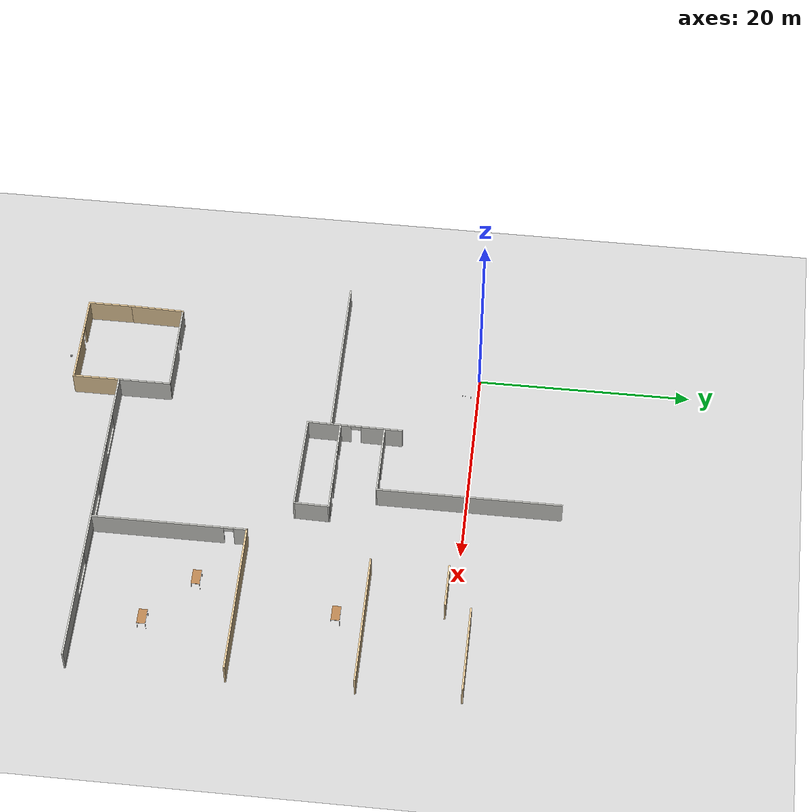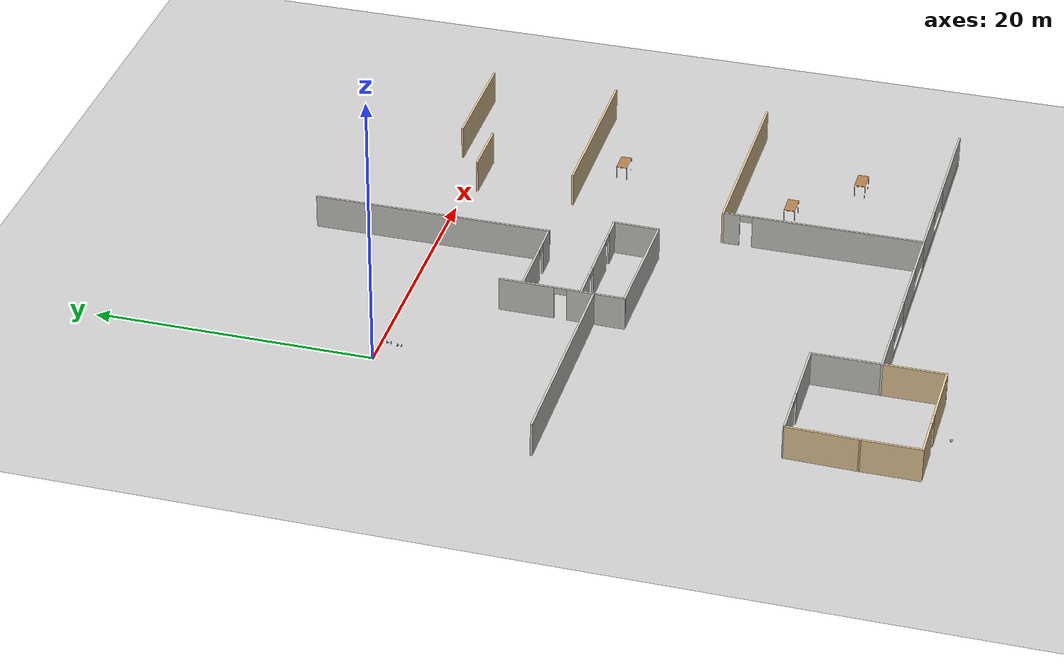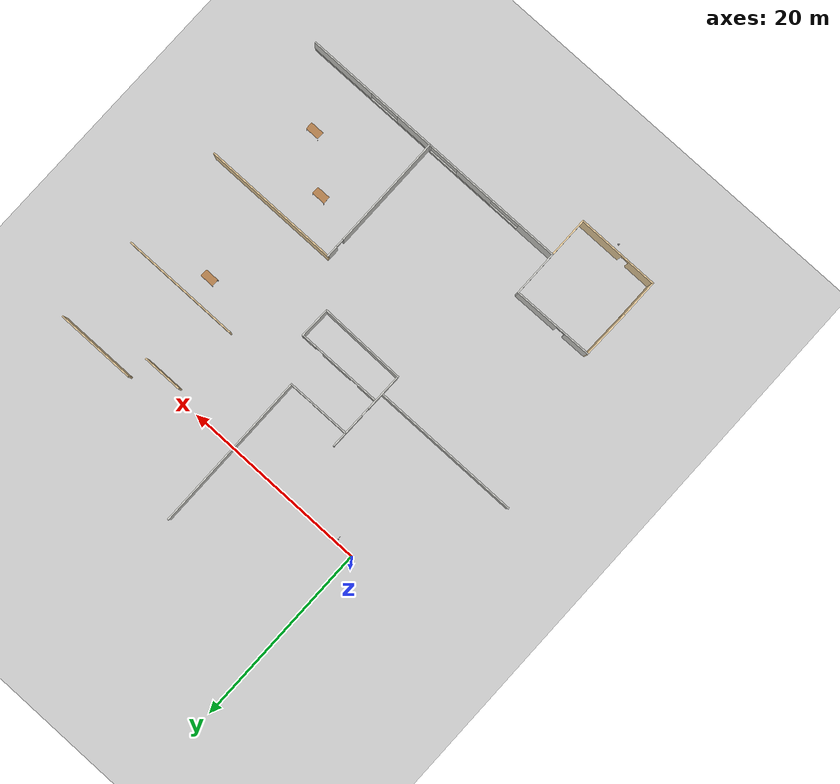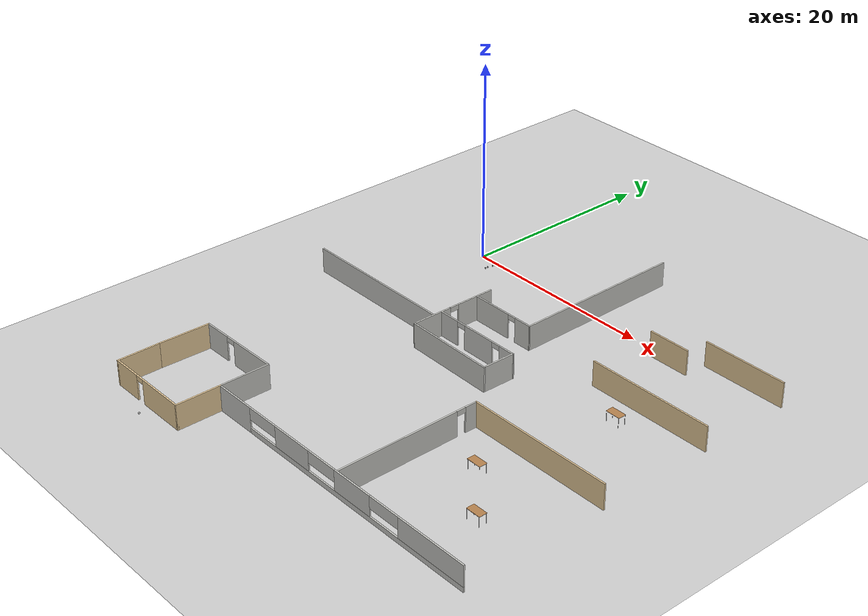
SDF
<sdf version="1.6">
 <world name="default">
  <model name="ground_plane">
   <static>1</static>
   <link name="link">
    <collision name="collision">
     <geometry><plane><normal>0 0 1</normal><size>100 100</size></plane></geometry>
     <surface><friction><ode><mu>100</mu><mu2>50</mu2></ode></friction></surface>
    </collision>
    <visual name="visual">
     <cast_shadows>0</cast_shadows>
     <geometry><plane><normal>0 0 1</normal><size>100 100</size></plane></geometry>
     <material>
      <script><uri>file://media/materials/scripts/gazebo.material</uri><name>Gazebo/Grey</name></script>
     </material>
    </visual>
   </link>
  </model>
  <model name="Building">
   <pose>0.1606 -0.442 0 0 -0 0</pose>
   <link name="Wall_100">
    <pose>12.7391 -11.9796 0 0 -0 3.14159</pose>
    <visual name="Wall_100_Visual_0">
     <pose>-3.75183 0 1.25 0 -0 0</pose>
     <geometry><box><size>1.74633 0.15 2.5</size></box></geometry>
     <material>
      <script><uri>file://media/materials/scripts/gazebo.material</uri><name>Gazebo/CeilingTiled</name></script>
      <ambient>1 1 1 1</ambient>
     </material>
     <meta><layer>0</layer></meta>
    </visual>
    <collision name="Wall_100_Collision_0">
     <geometry><box><size>1.74633 0.15 2.5</size></box></geometry>
     <pose>-3.75183 0 1.25 0 -0 0</pose>
    </collision>
    <visual name="Wall_100_Visual_1">
     <pose>-0.201089 0 1.25 0 -0 0</pose>
     <geometry><box><size>3.55516 0.15 2.5</size></box></geometry>
     <material>
      <script><uri>file://media/materials/scripts/gazebo.material</uri><name>Gazebo/CeilingTiled</name></script>
      <ambient>1 1 1 1</ambient>
     </material>
     <meta><layer>0</layer></meta>
    </visual>
    <collision name="Wall_100_Collision_1">
     <geometry><box><size>3.55516 0.15 2.5</size></box></geometry>
     <pose>-0.201089 0 1.25 0 -0 0</pose>
    </collision>
    <visual name="Wall_100_Visual_2">
     <pose>3.55075 0 1.25 0 -0 0</pose>
     <geometry><box><size>2.14851 0.15 2.5</size></box></geometry>
     <material>
      <script><uri>file://media/materials/scripts/gazebo.material</uri><name>Gazebo/CeilingTiled</name></script>
      <ambient>1 1 1 1</ambient>
     </material>
     <meta><layer>0</layer></meta>
    </visual>
    <collision name="Wall_100_Collision_2">
     <geometry><box><size>2.14851 0.15 2.5</size></box></geometry>
     <pose>3.55075 0 1.25 0 -0 0</pose>
    </collision>
    <visual name="Wall_100_Visual_3">
     <pose>-2.42867 0 2.25 0 -0 0</pose>
     <geometry><box><size>0.9 0.15 0.5</size></box></geometry>
     <material>
      <script><uri>file://media/materials/scripts/gazebo.material</uri><name>Gazebo/CeilingTiled</name></script>
      <ambient>1 1 1 1</ambient>
     </material>
     <meta><layer>0</layer></meta>
    </visual>
    <collision name="Wall_100_Collision_3">
     <geometry><box><size>0.9 0.15 0.5</size></box></geometry>
     <pose>-2.42867 0 2.25 0 -0 0</pose>
    </collision>
    <visual name="Wall_100_Visual_4">
     <pose>2.02649 0 2.25 0 -0 0</pose>
     <geometry><box><size>0.9 0.15 0.5</size></box></geometry>
     <material>
      <script><uri>file://media/materials/scripts/gazebo.material</uri><name>Gazebo/CeilingTiled</name></script>
      <ambient>1 1 1 1</ambient>
     </material>
     <meta><layer>0</layer></meta>
    </visual>
    <collision name="Wall_100_Collision_4">
     <geometry><box><size>0.9 0.15 0.5</size></box></geometry>
     <pose>2.02649 0 2.25 0 -0 0</pose>
    </collision>
   </link>
   <link name="Wall_105">
    <collision name="Wall_105_Collision">
     <geometry><box><size>4.25 0.15 2.5</size></box></geometry>
     <pose>0 0 1.25 0 -0 0</pose>
    </collision>
    <visual name="Wall_105_Visual">
     <pose>0 0 1.25 0 -0 0</pose>
     <geometry><box><size>4.25 0.15 2.5</size></box></geometry>
     <material>
      <script><uri>file://media/materials/scripts/gazebo.material</uri><name>Gazebo/Grey</name></script>
      <ambient>0.921569 0.807843 0.615686 1</ambient>
     </material>
     <meta><layer>0</layer></meta>
    </visual>
    <pose>24.6252 -0.368503 0 0 -0 0</pose>
   </link>
   <link name="Wall_109">
    <collision name="Wall_109_Collision">
     <geometry><box><size>8.5 0.15 2.5</size></box></geometry>
     <pose>0 0 1.25 0 -0 0</pose>
    </collision>
    <visual name="Wall_109_Visual">
     <pose>0 0 1.25 0 -0 0</pose>
     <geometry><box><size>8.5 0.15 2.5</size></box></geometry>
     <material>
      <script><uri>file://media/materials/scripts/gazebo.material</uri><name>Gazebo/Grey</name></script>
      <ambient>0.921569 0.807843 0.615686 1</ambient>
     </material>
     <meta><layer>0</layer></meta>
    </visual>
    <pose>31.0591 1.97974 0 0 -0 0</pose>
   </link>
   <link name="Wall_11">
    <collision name="Wall_11_Collision">
     <geometry><box><size>4.25 0.15 2.5</size></box></geometry>
     <pose>0 0 1.25 0 -0 0</pose>
    </collision>
    <visual name="Wall_11_Visual">
     <pose>0 0 1.25 0 -0 0</pose>
     <geometry><box><size>4.25 0.15 2.5</size></box></geometry>
     <material>
      <script><uri>file://media/materials/scripts/gazebo.material</uri><name>Gazebo/Grey</name></script>
      <ambient>0.921569 0.807843 0.615686 1</ambient>
     </material>
     <meta><layer>0</layer></meta>
    </visual>
    <pose>-3.9045 -35.8 0 0 0 -1.5708</pose>
   </link>
   <link name="Wall_12">
    <pose>0.520502 -37.85 0 0 -0 0</pose>
    <visual name="Wall_12_Visual_0">
     <pose>-2.96768 0 1.25 0 -0 0</pose>
     <geometry><box><size>3.06464 0.15 2.5</size></box></geometry>
     <material>
      <script><uri>file://media/materials/scripts/gazebo.material</uri><name>Gazebo/Grey</name></script>
      <ambient>0.921569 0.807843 0.615686 1</ambient>
     </material>
     <meta><layer>0</layer></meta>
    </visual>
    <collision name="Wall_12_Collision_0">
     <geometry><box><size>3.06464 0.15 2.5</size></box></geometry>
     <pose>-2.96768 0 1.25 0 -0 0</pose>
    </collision>
    <visual name="Wall_12_Visual_1">
     <pose>1.98232 0 1.25 0 -0 0</pose>
     <geometry><box><size>5.03536 0.15 2.5</size></box></geometry>
     <material>
      <script><uri>file://media/materials/scripts/gazebo.material</uri><name>Gazebo/Grey</name></script>
      <ambient>0.921569 0.807843 0.615686 1</ambient>
     </material>
     <meta><layer>0</layer></meta>
    </visual>
    <collision name="Wall_12_Collision_1">
     <geometry><box><size>5.03536 0.15 2.5</size></box></geometry>
     <pose>1.98232 0 1.25 0 -0 0</pose>
    </collision>
    <visual name="Wall_12_Visual_2">
     <pose>-0.985361 0 2.25 0 -0 0</pose>
     <geometry><box><size>0.9 0.15 0.5</size></box></geometry>
     <material>
      <script><uri>file://media/materials/scripts/gazebo.material</uri><name>Gazebo/Grey</name></script>
      <ambient>0.921569 0.807843 0.615686 1</ambient>
     </material>
     <meta><layer>0</layer></meta>
    </visual>
    <collision name="Wall_12_Collision_2">
     <geometry><box><size>0.9 0.15 0.5</size></box></geometry>
     <pose>-0.985361 0 2.25 0 -0 0</pose>
    </collision>
   </link>
   <link name="Wall_13">
    <collision name="Wall_13_Collision">
     <geometry><box><size>4.5 0.15 2.5</size></box></geometry>
     <pose>0 0 1.25 0 -0 0</pose>
    </collision>
    <visual name="Wall_13_Visual">
     <pose>0 0 1.25 0 -0 0</pose>
     <geometry><box><size>4.5 0.15 2.5</size></box></geometry>
     <material>
      <script><uri>file://media/materials/scripts/gazebo.material</uri><name>Gazebo/Grey</name></script>
      <ambient>0.921569 0.807843 0.615686 1</ambient>
     </material>
     <meta><layer>0</layer></meta>
    </visual>
    <pose>4.9455 -35.675 0 0 -0 1.5708</pose>
   </link>
   <link name="Wall_14">
    <pose>20.1205 -33.5 0 0 -0 0</pose>
    <visual name="Wall_14_Visual_0">
     <pose>-13.0855 0 1.25 0 -0 0</pose>
     <geometry><box><size>4.3291 0.15 2.5</size></box></geometry>
     <material>
      <script><uri>file://media/materials/scripts/gazebo.material</uri><name>Gazebo/CeilingTiled</name></script>
      <ambient>0.921569 0.807843 0.615686 1</ambient>
     </material>
     <meta><layer>0</layer></meta>
    </visual>
    <collision name="Wall_14_Collision_0">
     <geometry><box><size>4.3291 0.15 2.5</size></box></geometry>
     <pose>-13.0855 0 1.25 0 -0 0</pose>
    </collision>
    <visual name="Wall_14_Visual_1">
     <pose>2.16455 0 0.25 0 -0 0</pose>
     <geometry><box><size>26.1709 0.15 0.5</size></box></geometry>
     <material>
      <script><uri>file://media/materials/scripts/gazebo.material</uri><name>Gazebo/CeilingTiled</name></script>
      <ambient>0.921569 0.807843 0.615686 1</ambient>
     </material>
     <meta><layer>0</layer></meta>
    </visual>
    <collision name="Wall_14_Collision_1">
     <geometry><box><size>26.1709 0.15 0.5</size></box></geometry>
     <pose>2.16455 0 0.25 0 -0 0</pose>
    </collision>
    <visual name="Wall_14_Visual_2">
     <pose>-5.28013 0 1.5 0 -0 0</pose>
     <geometry><box><size>4.37212 0.15 2</size></box></geometry>
     <material>
      <script><uri>file://media/materials/scripts/gazebo.material</uri><name>Gazebo/CeilingTiled</name></script>
      <ambient>0.921569 0.807843 0.615686 1</ambient>
     </material>
     <meta><layer>0</layer></meta>
    </visual>
    <collision name="Wall_14_Collision_2">
     <geometry><box><size>4.37212 0.15 2</size></box></geometry>
     <pose>-5.28013 0 1.5 0 -0 0</pose>
    </collision>
    <visual name="Wall_14_Visual_3">
     <pose>2.38651 0 1.5 0 -0 0</pose>
     <geometry><box><size>4.32635 0.15 2</size></box></geometry>
     <material>
      <script><uri>file://media/materials/scripts/gazebo.material</uri><name>Gazebo/CeilingTiled</name></script>
      <ambient>0.921569 0.807843 0.615686 1</ambient>
     </material>
     <meta><layer>0</layer></meta>
    </visual>
    <collision name="Wall_14_Collision_3">
     <geometry><box><size>4.32635 0.15 2</size></box></geometry>
     <pose>2.38651 0 1.5 0 -0 0</pose>
    </collision>
    <visual name="Wall_14_Visual_4">
     <pose>11.5814 0 1.5 0 -0 0</pose>
     <geometry><box><size>7.33714 0.15 2</size></box></geometry>
     <material>
      <script><uri>file://media/materials/scripts/gazebo.material</uri><name>Gazebo/CeilingTiled</name></script>
      <ambient>0.921569 0.807843 0.615686 1</ambient>
     </material>
     <meta><layer>0</layer></meta>
    </visual>
    <collision name="Wall_14_Collision_4">
     <geometry><box><size>7.33714 0.15 2</size></box></geometry>
     <pose>11.5814 0 1.5 0 -0 0</pose>
    </collision>
    <visual name="Wall_14_Visual_5">
     <pose>-9.19355 0 1.9 0 -0 0</pose>
     <geometry><box><size>3.45472 0.15 1.2</size></box></geometry>
     <material>
      <script><uri>file://media/materials/scripts/gazebo.material</uri><name>Gazebo/CeilingTiled</name></script>
      <ambient>0.921569 0.807843 0.615686 1</ambient>
     </material>
     <meta><layer>0</layer></meta>
    </visual>
    <collision name="Wall_14_Collision_5">
     <geometry><box><size>3.45472 0.15 1.2</size></box></geometry>
     <pose>-9.19355 0 1.9 0 -0 0</pose>
    </collision>
    <visual name="Wall_14_Visual_6">
     <pose>-1.43537 0 1.9 0 -0 0</pose>
     <geometry><box><size>3.3174 0.15 1.2</size></box></geometry>
     <material>
      <script><uri>file://media/materials/scripts/gazebo.material</uri><name>Gazebo/CeilingTiled</name></script>
      <ambient>0.921569 0.807843 0.615686 1</ambient>
     </material>
     <meta><layer>0</layer></meta>
    </visual>
    <collision name="Wall_14_Collision_6">
     <geometry><box><size>3.3174 0.15 1.2</size></box></geometry>
     <pose>-1.43537 0 1.9 0 -0 0</pose>
    </collision>
    <visual name="Wall_14_Visual_7">
     <pose>6.23127 0 1.9 0 -0 0</pose>
     <geometry><box><size>3.36317 0.15 1.2</size></box></geometry>
     <material>
      <script><uri>file://media/materials/scripts/gazebo.material</uri><name>Gazebo/CeilingTiled</name></script>
      <ambient>0.921569 0.807843 0.615686 1</ambient>
     </material>
     <meta><layer>0</layer></meta>
    </visual>
    <collision name="Wall_14_Collision_7">
     <geometry><box><size>3.36317 0.15 1.2</size></box></geometry>
     <pose>6.23127 0 1.9 0 -0 0</pose>
    </collision>
   </link>
   <link name="Wall_181">
    <pose>8.05273 -10.6417 0 0 -0 1.55946</pose>
    <visual name="Wall_181_Visual_0">
     <pose>-2.4226 0 1.25 0 -0 0</pose>
     <geometry><box><size>4.1635 0.15 2.5</size></box></geometry>
     <material>
      <script><uri>file://media/materials/scripts/gazebo.material</uri><name>Gazebo/CeilingTiled</name></script>
      <ambient>1 1 1 1</ambient>
     </material>
     <meta><layer>0</layer></meta>
    </visual>
    <collision name="Wall_181_Collision_0">
     <geometry><box><size>4.1635 0.15 2.5</size></box></geometry>
     <pose>-2.4226 0 1.25 0 -0 0</pose>
    </collision>
    <visual name="Wall_181_Visual_1">
     <pose>2.53175 0 1.25 0 -0 0</pose>
     <geometry><box><size>3.94519 0.15 2.5</size></box></geometry>
     <material>
      <script><uri>file://media/materials/scripts/gazebo.material</uri><name>Gazebo/CeilingTiled</name></script>
      <ambient>1 1 1 1</ambient>
     </material>
     <meta><layer>0</layer></meta>
    </visual>
    <collision name="Wall_181_Collision_1">
     <geometry><box><size>3.94519 0.15 2.5</size></box></geometry>
     <pose>2.53175 0 1.25 0 -0 0</pose>
    </collision>
    <visual name="Wall_181_Visual_2">
     <pose>0.109156 0 2.25 0 -0 0</pose>
     <geometry><box><size>0.9 0.15 0.5</size></box></geometry>
     <material>
      <script><uri>file://media/materials/scripts/gazebo.material</uri><name>Gazebo/CeilingTiled</name></script>
      <ambient>1 1 1 1</ambient>
     </material>
     <meta><layer>0</layer></meta>
    </visual>
    <collision name="Wall_181_Collision_2">
     <geometry><box><size>0.9 0.15 0.5</size></box></geometry>
     <pose>0.109156 0 2.25 0 -0 0</pose>
    </collision>
   </link>
   <link name="Wall_42">
    <collision name="Wall_42_Collision">
     <geometry><box><size>12.75 0.15 2.5</size></box></geometry>
     <pose>0 0 1.25 0 -0 0</pose>
    </collision>
    <visual name="Wall_42_Visual">
     <pose>0 0 1.25 0 -0 0</pose>
     <geometry><box><size>12.75 0.15 2.5</size></box></geometry>
     <material>
      <script><uri>file://media/materials/scripts/gazebo.material</uri><name>Gazebo/Grey</name></script>
      <ambient>0.921569 0.807843 0.615686 1</ambient>
     </material>
     <meta><layer>0</layer></meta>
    </visual>
    <pose>28.9541 -7.52341 0 0 -0 0</pose>
   </link>
   <link name="Wall_44">
    <collision name="Wall_44_Collision">
     <geometry><box><size>14.75 0.15 2.5</size></box></geometry>
     <pose>0 0 1.25 0 -0 0</pose>
    </collision>
    <visual name="Wall_44_Visual">
     <pose>0 0 1.25 0 -0 0</pose>
     <geometry><box><size>14.75 0.15 2.5</size></box></geometry>
     <material>
      <script><uri>file://media/materials/scripts/gazebo.material</uri><name>Gazebo/Grey</name></script>
      <ambient>0.921569 0.807843 0.615686 1</ambient>
     </material>
     <meta><layer>0</layer></meta>
    </visual>
    <pose>27.8973 -19.1114 0 0 -0 0</pose>
   </link>
   <link name="Wall_46">
    <pose>20.5973 -26.2864 0 0 0 -1.5708</pose>
    <visual name="Wall_46_Visual_0">
     <pose>-6.60084 0 1.25 0 -0 0</pose>
     <geometry><box><size>1.29831 0.15 2.5</size></box></geometry>
     <material>
      <script><uri>file://media/materials/scripts/gazebo.material</uri><name>Gazebo/CeilingTiled</name></script>
      <ambient>1 1 1 1</ambient>
     </material>
     <meta><layer>0</layer></meta>
    </visual>
    <collision name="Wall_46_Collision_0">
     <geometry><box><size>1.29831 0.15 2.5</size></box></geometry>
     <pose>-6.60084 0 1.25 0 -0 0</pose>
    </collision>
    <visual name="Wall_46_Visual_1">
     <pose>1.09916 0 1.25 0 -0 0</pose>
     <geometry><box><size>12.3017 0.15 2.5</size></box></geometry>
     <material>
      <script><uri>file://media/materials/scripts/gazebo.material</uri><name>Gazebo/CeilingTiled</name></script>
      <ambient>1 1 1 1</ambient>
     </material>
     <meta><layer>0</layer></meta>
    </visual>
    <collision name="Wall_46_Collision_1">
     <geometry><box><size>12.3017 0.15 2.5</size></box></geometry>
     <pose>1.09916 0 1.25 0 -0 0</pose>
    </collision>
    <visual name="Wall_46_Visual_2">
     <pose>-5.50169 0 2.25 0 -0 0</pose>
     <geometry><box><size>0.9 0.15 0.5</size></box></geometry>
     <material>
      <script><uri>file://media/materials/scripts/gazebo.material</uri><name>Gazebo/CeilingTiled</name></script>
      <ambient>1 1 1 1</ambient>
     </material>
     <meta><layer>0</layer></meta>
    </visual>
    <collision name="Wall_46_Collision_2">
     <geometry><box><size>0.9 0.15 0.5</size></box></geometry>
     <pose>-5.50169 0 2.25 0 -0 0</pose>
    </collision>
   </link>
   <link name="Wall_63">
    <collision name="Wall_63_Collision">
     <geometry><box><size>5.18443 0.15 2.5</size></box></geometry>
     <pose>0 0 1.25 0 -0 0</pose>
    </collision>
    <visual name="Wall_63_Visual">
     <pose>0 0 1.25 0 -0 0</pose>
     <geometry><box><size>5.18443 0.15 2.5</size></box></geometry>
     <material>
      <script><uri>file://media/materials/scripts/gazebo.material</uri><name>Gazebo/Grey</name></script>
      <ambient>0.921569 0.807843 0.615686 1</ambient>
     </material>
     <meta><layer>0</layer></meta>
    </visual>
    <pose>-3.84622 -31.2335 0 0 0 -1.59395</pose>
   </link>
   <link name="Wall_68">
    <collision name="Wall_68_Collision">
     <geometry><box><size>5 0.15 2.5</size></box></geometry>
     <pose>0 0 1.25 0 -0 0</pose>
    </collision>
    <visual name="Wall_68_Visual">
     <pose>0 0 1.25 0 -0 0</pose>
     <geometry><box><size>5 0.15 2.5</size></box></geometry>
     <material>
      <script><uri>file://media/materials/scripts/gazebo.material</uri><name>Gazebo/CeilingTiled</name></script>
      <ambient>0.921569 0.807843 0.615686 1</ambient>
     </material>
     <meta><layer>0</layer></meta>
    </visual>
    <pose>4.9455 -31.075 0 0 -0 1.5708</pose>
   </link>
   <link name="Wall_70">
    <pose>0.51206 -28.6767 0 0 -0 0.009362</pose>
    <visual name="Wall_70_Visual_0">
     <pose>-2.93111 0 1.25 0 -0 0</pose>
     <geometry><box><size>2.88816 0.15 2.5</size></box></geometry>
     <material>
      <script><uri>file://media/materials/scripts/gazebo.material</uri><name>Gazebo/CeilingTiled</name></script>
      <ambient>1 1 1 1</ambient>
     </material>
     <meta><layer>0</layer></meta>
    </visual>
    <collision name="Wall_70_Collision_0">
     <geometry><box><size>2.88816 0.15 2.5</size></box></geometry>
     <pose>-2.93111 0 1.25 0 -0 0</pose>
    </collision>
    <visual name="Wall_70_Visual_1">
     <pose>1.94408 0 1.25 0 -0 0</pose>
     <geometry><box><size>4.86222 0.15 2.5</size></box></geometry>
     <material>
      <script><uri>file://media/materials/scripts/gazebo.material</uri><name>Gazebo/CeilingTiled</name></script>
      <ambient>1 1 1 1</ambient>
     </material>
     <meta><layer>0</layer></meta>
    </visual>
    <collision name="Wall_70_Collision_1">
     <geometry><box><size>4.86222 0.15 2.5</size></box></geometry>
     <pose>1.94408 0 1.25 0 -0 0</pose>
    </collision>
    <visual name="Wall_70_Visual_2">
     <pose>-0.987029 0 2.25 0 -0 0</pose>
     <geometry><box><size>1 0.15 0.5</size></box></geometry>
     <material>
      <script><uri>file://media/materials/scripts/gazebo.material</uri><name>Gazebo/CeilingTiled</name></script>
      <ambient>1 1 1 1</ambient>
     </material>
     <meta><layer>0</layer></meta>
    </visual>
    <collision name="Wall_70_Collision_2">
     <geometry><box><size>1 0.15 0.5</size></box></geometry>
     <pose>-0.987029 0 2.25 0 -0 0</pose>
    </collision>
   </link>
   <link name="Wall_87">
    <collision name="Wall_87_Collision">
     <geometry><box><size>17.25 0.15 2.5</size></box></geometry>
     <pose>0 0 1.25 0 -0 0</pose>
    </collision>
    <visual name="Wall_87_Visual">
     <pose>0 0 1.25 0 -0 0</pose>
     <geometry><box><size>17.25 0.15 2.5</size></box></geometry>
     <material>
      <script><uri>file://media/materials/scripts/gazebo.material</uri><name>Gazebo/CeilingTiled</name></script>
      <ambient>1 1 1 1</ambient>
     </material>
     <meta><layer>0</layer></meta>
    </visual>
    <pose>14.953 0.737402 0 0 0 -1.5708</pose>
   </link>
   <link name="Wall_88">
    <pose>11.528 -7.8218 0 0 0 -3.13891</pose>
    <visual name="Wall_88_Visual_0">
     <pose>-2.56309 0 1.25 0 -0 0</pose>
     <geometry><box><size>1.87384 0.15 2.5</size></box></geometry>
     <material>
      <script><uri>file://media/materials/scripts/gazebo.material</uri><name>Gazebo/CeilingTiled</name></script>
      <ambient>1 1 1 1</ambient>
     </material>
     <meta><layer>0</layer></meta>
    </visual>
    <collision name="Wall_88_Collision_0">
     <geometry><box><size>1.87384 0.15 2.5</size></box></geometry>
     <pose>-2.56309 0 1.25 0 -0 0</pose>
    </collision>
    <visual name="Wall_88_Visual_1">
     <pose>1.38692 0 1.25 0 -0 0</pose>
     <geometry><box><size>4.22618 0.15 2.5</size></box></geometry>
     <material>
      <script><uri>file://media/materials/scripts/gazebo.material</uri><name>Gazebo/CeilingTiled</name></script>
      <ambient>1 1 1 1</ambient>
     </material>
     <meta><layer>0</layer></meta>
    </visual>
    <collision name="Wall_88_Collision_1">
     <geometry><box><size>4.22618 0.15 2.5</size></box></geometry>
     <pose>1.38692 0 1.25 0 -0 0</pose>
    </collision>
    <visual name="Wall_88_Visual_2">
     <pose>-1.17617 0 2.25 0 -0 0</pose>
     <geometry><box><size>0.9 0.15 0.5</size></box></geometry>
     <material>
      <script><uri>file://media/materials/scripts/gazebo.material</uri><name>Gazebo/CeilingTiled</name></script>
      <ambient>1 1 1 1</ambient>
     </material>
     <meta><layer>0</layer></meta>
    </visual>
    <collision name="Wall_88_Collision_2">
     <geometry><box><size>0.9 0.15 0.5</size></box></geometry>
     <pose>-1.17617 0 2.25 0 -0 0</pose>
    </collision>
   </link>
   <link name="Wall_96">
    <collision name="Wall_96_Collision">
     <geometry><box><size>16 0.15 2.5</size></box></geometry>
     <pose>0 0 1.25 0 -0 0</pose>
    </collision>
    <visual name="Wall_96_Visual">
     <pose>0 0 1.25 0 -0 0</pose>
     <geometry><box><size>16 0.15 2.5</size></box></geometry>
     <material>
      <script><uri>file://media/materials/scripts/gazebo.material</uri><name>Gazebo/CeilingTiled</name></script>
      <ambient>1 1 1 1</ambient>
     </material>
     <meta><layer>0</layer></meta>
    </visual>
    <pose>-0.010075 -12.8829 0 0 -0 0</pose>
   </link>
   <link name="Wall_98">
    <collision name="Wall_98_Collision">
     <geometry><box><size>9.36426 0.15 2.5</size></box></geometry>
     <pose>0 0 1.25 0 -0 0</pose>
    </collision>
    <visual name="Wall_98_Visual">
     <pose>0 0 1.25 0 -0 0</pose>
     <geometry><box><size>9.36426 0.15 2.5</size></box></geometry>
     <material>
      <script><uri>file://media/materials/scripts/gazebo.material</uri><name>Gazebo/CeilingTiled</name></script>
      <ambient>1 1 1 1</ambient>
     </material>
     <meta><layer>0</layer></meta>
    </visual>
    <pose>12.6095 -15.1397 0 0 0 -0.014972</pose>
   </link>
   <link name="Wall_99">
    <collision name="Wall_99_Collision">
     <geometry><box><size>3.35576 0.15 2.5</size></box></geometry>
     <pose>0 0 1.25 0 -0 0</pose>
    </collision>
    <visual name="Wall_99_Visual">
     <pose>0 0 1.25 0 -0 0</pose>
     <geometry><box><size>3.35576 0.15 2.5</size></box></geometry>
     <material>
      <script><uri>file://media/materials/scripts/gazebo.material</uri><name>Gazebo/CeilingTiled</name></script>
      <ambient>1 1 1 1</ambient>
     </material>
     <meta><layer>0</layer></meta>
    </visual>
    <pose>17.2528 -13.5578 0 0 -0 1.54815</pose>
   </link>
   <static>1</static>
  </model>
  <model name="table_clone_6">
   <static>1</static>
   <link name="link">
    <collision name="surface">
     <pose>0 0 1 0 -0 0</pose>
     <geometry><box><size>1.5 0.8 0.03</size></box></geometry>
     <surface><friction><ode><mu>0.6</mu><mu2>0.6</mu2></ode></friction></surface>
    </collision>
    <visual name="visual1">
     <pose>0 0 1 0 -0 0</pose>
     <geometry><box><size>1.5 0.8 0.03</size></box></geometry>
     <material>
      <script><uri>file://media/materials/scripts/gazebo.material</uri><name>Gazebo/Wood</name></script>
     </material>
    </visual>
    <collision name="front_left_leg">
     <pose>0.68 0.38 0.5 0 -0 0</pose>
     <geometry><cylinder><radius>0.02</radius><length>1</length></cylinder></geometry>
    </collision>
    <visual name="front_left_leg">
     <pose>0.68 0.38 0.5 0 -0 0</pose>
     <geometry><cylinder><radius>0.02</radius><length>1</length></cylinder></geometry>
     <material>
      <script><uri>file://media/materials/scripts/gazebo.material</uri><name>Gazebo/Grey</name></script>
     </material>
    </visual>
    <collision name="front_right_leg">
     <pose>0.68 -0.38 0.5 0 -0 0</pose>
     <geometry><cylinder><radius>0.02</radius><length>1</length></cylinder></geometry>
    </collision>
    <visual name="front_right_leg">
     <pose>0.68 -0.38 0.5 0 -0 0</pose>
     <geometry><cylinder><radius>0.02</radius><length>1</length></cylinder></geometry>
     <material>
      <script><uri>file://media/materials/scripts/gazebo.material</uri><name>Gazebo/Grey</name></script>
     </material>
    </visual>
    <collision name="back_right_leg">
     <pose>-0.68 -0.38 0.5 0 -0 0</pose>
     <geometry><cylinder><radius>0.02</radius><length>1</length></cylinder></geometry>
    </collision>
    <visual name="back_right_leg">
     <pose>-0.68 -0.38 0.5 0 -0 0</pose>
     <geometry><cylinder><radius>0.02</radius><length>1</length></cylinder></geometry>
     <material>
      <script><uri>file://media/materials/scripts/gazebo.material</uri><name>Gazebo/Grey</name></script>
     </material>
    </visual>
    <collision name="back_left_leg">
     <pose>-0.68 0.38 0.5 0 -0 0</pose>
     <geometry><cylinder><radius>0.02</radius><length>1</length></cylinder></geometry>
    </collision>
    <visual name="back_left_leg">
     <pose>-0.68 0.38 0.5 0 -0 0</pose>
     <geometry><cylinder><radius>0.02</radius><length>1</length></cylinder></geometry>
     <material>
      <script><uri>file://media/materials/scripts/gazebo.material</uri><name>Gazebo/Grey</name></script>
     </material>
    </visual>
   </link>
   <pose>25.3727 -23.5777 0 0 -0 0</pose>
  </model>
  <model name="table_clone_7">
   <static>1</static>
   <link name="link">
    <collision name="surface">
     <pose>0 0 1 0 -0 0</pose>
     <geometry><box><size>1.5 0.8 0.03</size></box></geometry>
     <surface><friction><ode><mu>0.6</mu><mu2>0.6</mu2></ode></friction></surface>
    </collision>
    <visual name="visual1">
     <pose>0 0 1 0 -0 0</pose>
     <geometry><box><size>1.5 0.8 0.03</size></box></geometry>
     <material>
      <script><uri>file://media/materials/scripts/gazebo.material</uri><name>Gazebo/Wood</name></script>
     </material>
    </visual>
    <collision name="front_left_leg">
     <pose>0.68 0.38 0.5 0 -0 0</pose>
     <geometry><cylinder><radius>0.02</radius><length>1</length></cylinder></geometry>
    </collision>
    <visual name="front_left_leg">
     <pose>0.68 0.38 0.5 0 -0 0</pose>
     <geometry><cylinder><radius>0.02</radius><length>1</length></cylinder></geometry>
     <material>
      <script><uri>file://media/materials/scripts/gazebo.material</uri><name>Gazebo/Grey</name></script>
     </material>
    </visual>
    <collision name="front_right_leg">
     <pose>0.68 -0.38 0.5 0 -0 0</pose>
     <geometry><cylinder><radius>0.02</radius><length>1</length></cylinder></geometry>
    </collision>
    <visual name="front_right_leg">
     <pose>0.68 -0.38 0.5 0 -0 0</pose>
     <geometry><cylinder><radius>0.02</radius><length>1</length></cylinder></geometry>
     <material>
      <script><uri>file://media/materials/scripts/gazebo.material</uri><name>Gazebo/Grey</name></script>
     </material>
    </visual>
    <collision name="back_right_leg">
     <pose>-0.68 -0.38 0.5 0 -0 0</pose>
     <geometry><cylinder><radius>0.02</radius><length>1</length></cylinder></geometry>
    </collision>
    <visual name="back_right_leg">
     <pose>-0.68 -0.38 0.5 0 -0 0</pose>
     <geometry><cylinder><radius>0.02</radius><length>1</length></cylinder></geometry>
     <material>
      <script><uri>file://media/materials/scripts/gazebo.material</uri><name>Gazebo/Grey</name></script>
     </material>
    </visual>
    <collision name="back_left_leg">
     <pose>-0.68 0.38 0.5 0 -0 0</pose>
     <geometry><cylinder><radius>0.02</radius><length>1</length></cylinder></geometry>
    </collision>
    <visual name="back_left_leg">
     <pose>-0.68 0.38 0.5 0 -0 0</pose>
     <geometry><cylinder><radius>0.02</radius><length>1</length></cylinder></geometry>
     <material>
      <script><uri>file://media/materials/scripts/gazebo.material</uri><name>Gazebo/Grey</name></script>
     </material>
    </visual>
   </link>
   <pose>30.0352 -27.808 0 0 -0 0</pose>
  </model>
  <model name="table_clone_8">
   <static>1</static>
   <link name="link">
    <collision name="surface">
     <pose>0 0 1 0 -0 0</pose>
     <geometry><box><size>1.5 0.8 0.03</size></box></geometry>
     <surface><friction><ode><mu>0.6</mu><mu2>0.6</mu2></ode></friction></surface>
    </collision>
    <visual name="visual1">
     <pose>0 0 1 0 -0 0</pose>
     <geometry><box><size>1.5 0.8 0.03</size></box></geometry>
     <material>
      <script><uri>file://media/materials/scripts/gazebo.material</uri><name>Gazebo/Wood</name></script>
     </material>
    </visual>
    <collision name="front_left_leg">
     <pose>0.68 0.38 0.5 0 -0 0</pose>
     <geometry><cylinder><radius>0.02</radius><length>1</length></cylinder></geometry>
    </collision>
    <visual name="front_left_leg">
     <pose>0.68 0.38 0.5 0 -0 0</pose>
     <geometry><cylinder><radius>0.02</radius><length>1</length></cylinder></geometry>
     <material>
      <script><uri>file://media/materials/scripts/gazebo.material</uri><name>Gazebo/Grey</name></script>
     </material>
    </visual>
    <collision name="front_right_leg">
     <pose>0.68 -0.38 0.5 0 -0 0</pose>
     <geometry><cylinder><radius>0.02</radius><length>1</length></cylinder></geometry>
    </collision>
    <visual name="front_right_leg">
     <pose>0.68 -0.38 0.5 0 -0 0</pose>
     <geometry><cylinder><radius>0.02</radius><length>1</length></cylinder></geometry>
     <material>
      <script><uri>file://media/materials/scripts/gazebo.material</uri><name>Gazebo/Grey</name></script>
     </material>
    </visual>
    <collision name="back_right_leg">
     <pose>-0.68 -0.38 0.5 0 -0 0</pose>
     <geometry><cylinder><radius>0.02</radius><length>1</length></cylinder></geometry>
    </collision>
    <visual name="back_right_leg">
     <pose>-0.68 -0.38 0.5 0 -0 0</pose>
     <geometry><cylinder><radius>0.02</radius><length>1</length></cylinder></geometry>
     <material>
      <script><uri>file://media/materials/scripts/gazebo.material</uri><name>Gazebo/Grey</name></script>
     </material>
    </visual>
    <collision name="back_left_leg">
     <pose>-0.68 0.38 0.5 0 -0 0</pose>
     <geometry><cylinder><radius>0.02</radius><length>1</length></cylinder></geometry>
    </collision>
    <visual name="back_left_leg">
     <pose>-0.68 0.38 0.5 0 -0 0</pose>
     <geometry><cylinder><radius>0.02</radius><length>1</length></cylinder></geometry>
     <material>
      <script><uri>file://media/materials/scripts/gazebo.material</uri><name>Gazebo/Grey</name></script>
     </material>
    </visual>
   </link>
   <pose>27.894 -10.529 0 0 -0 0</pose>
  </model>
  <model name="model_0">
   <link name="link_0">
    <pose>0 0.001248 -0.001875 1.5707 -0 0</pose>
    <inertial>
     <mass>1</mass>
     <inertia><ixx>0.145833</ixx><ixy>0</ixy><ixz>0</ixz><iyy>0.145833</iyy><iyz>0</iyz><izz>0.125</izz></inertia>
    </inertial>
    <visual name="visual">
     <geometry><cylinder><radius>0.01</radius><length>0.3</length></cylinder></geometry>
     <material>
      <lighting>1</lighting>
      <script><uri>file://media/materials/scripts/gazebo.material</uri><name>Gazebo/Grey</name></script>
      <ambient>0.3 0.3 0.3 1</ambient>
      <diffuse>0.7 0.7 0.7 1</diffuse>
      <specular>0.01 0.01 0.01 1</specular>
      <emissive>0 0 0 1</emissive>
      <shader type="vertex"><normal_map>__default__</normal_map></shader>
     </material>
    </visual>
    <collision name="collision">
     <geometry><cylinder><radius>0.01</radius><length>0.3</length></cylinder></geometry>
     <surface>
      <friction>
       <ode><mu>1</mu><mu2>1</mu2><fdir1>0 0 0</fdir1><slip1>0</slip1><slip2>0</slip2></ode>
       <torsional>
        <coefficient>1</coefficient>
        <patch_radius>0</patch_radius>
        <surface_radius>0</surface_radius>
        <use_patch_radius>1</use_patch_radius>
        <ode><slip>0</slip></ode>
       </torsional>
      </friction>
      <bounce><restitution_coefficient>0</restitution_coefficient><threshold>1e+06</threshold></bounce>
      <contact>
       <collide_without_contact>0</collide_without_contact>
       <collide_without_contact_bitmask>1</collide_without_contact_bitmask>
       <collide_bitmask>1</collide_bitmask>
       <ode>
        <soft_cfm>0</soft_cfm>
        <soft_erp>0.2</soft_erp>
        <kp>1e+13</kp>
        <kd>1</kd>
        <max_vel>0.01</max_vel>
        <min_depth>0</min_depth>
       </ode>
       <bullet>
        <split_impulse>1</split_impulse>
        <split_impulse_penetration_threshold>-0.01</split_impulse_penetration_threshold>
        <soft_cfm>0</soft_cfm>
        <soft_erp>0.2</soft_erp>
        <kp>1e+13</kp>
        <kd>1</kd>
       </bullet>
      </contact>
     </surface>
    </collision>
   </link>
   <link name="link_1_clone">
    <pose>0 -0.148753 -0.001861 1.5707 -0 0</pose>
    <inertial>
     <mass>1</mass>
     <inertia><ixx>0.145833</ixx><ixy>0</ixy><ixz>0</ixz><iyy>0.145833</iyy><iyz>0</iyz><izz>0.125</izz></inertia>
    </inertial>
    <visual name="visual">
     <geometry><cylinder><radius>0.1</radius><length>0.01</length></cylinder></geometry>
     <material>
      <lighting>1</lighting>
      <script><uri>file://media/materials/scripts/gazebo.material</uri><name>Gazebo/Grey</name></script>
      <ambient>0.3 0.3 0.3 1</ambient>
      <diffuse>0.7 0.7 0.7 1</diffuse>
      <specular>0.01 0.01 0.01 1</specular>
      <emissive>0 0 0 1</emissive>
      <shader type="vertex"><normal_map>__default__</normal_map></shader>
     </material>
    </visual>
    <collision name="collision">
     <geometry><cylinder><radius>0.1</radius><length>0.01</length></cylinder></geometry>
     <surface>
      <friction>
       <ode><mu>1</mu><mu2>1</mu2><fdir1>0 0 0</fdir1><slip1>0</slip1><slip2>0</slip2></ode>
       <torsional>
        <coefficient>1</coefficient>
        <patch_radius>0</patch_radius>
        <surface_radius>0</surface_radius>
        <use_patch_radius>1</use_patch_radius>
        <ode><slip>0</slip></ode>
       </torsional>
      </friction>
      <bounce><restitution_coefficient>0</restitution_coefficient><threshold>1e+06</threshold></bounce>
      <contact>
       <collide_without_contact>0</collide_without_contact>
       <collide_without_contact_bitmask>1</collide_without_contact_bitmask>
       <collide_bitmask>1</collide_bitmask>
       <ode>
        <soft_cfm>0</soft_cfm>
        <soft_erp>0.2</soft_erp>
        <kp>1e+13</kp>
        <kd>1</kd>
        <max_vel>0.01</max_vel>
        <min_depth>0</min_depth>
       </ode>
       <bullet>
        <split_impulse>1</split_impulse>
        <split_impulse_penetration_threshold>-0.01</split_impulse_penetration_threshold>
        <soft_cfm>0</soft_cfm>
        <soft_erp>0.2</soft_erp>
        <kp>1e+13</kp>
        <kd>1</kd>
       </bullet>
      </contact>
     </surface>
    </collision>
   </link>
   <link name="link_1_clone_clone_0">
    <pose>0 0.151248 -0.001889 1.5707 -0 0</pose>
    <inertial>
     <mass>1</mass>
     <inertia><ixx>0.145833</ixx><ixy>0</ixy><ixz>0</ixz><iyy>0.145833</iyy><iyz>0</iyz><izz>0.125</izz></inertia>
    </inertial>
    <visual name="visual">
     <geometry><cylinder><radius>0.1</radius><length>0.01</length></cylinder></geometry>
     <material>
      <lighting>1</lighting>
      <script><uri>file://media/materials/scripts/gazebo.material</uri><name>Gazebo/Grey</name></script>
      <ambient>0.3 0.3 0.3 1</ambient>
      <diffuse>0.7 0.7 0.7 1</diffuse>
      <specular>0.01 0.01 0.01 1</specular>
      <emissive>0 0 0 1</emissive>
      <shader type="vertex"><normal_map>__default__</normal_map></shader>
     </material>
    </visual>
    <collision name="collision">
     <geometry><cylinder><radius>0.1</radius><length>0.01</length></cylinder></geometry>
     <surface>
      <friction>
       <ode><mu>1</mu><mu2>1</mu2><fdir1>0 0 0</fdir1><slip1>0</slip1><slip2>0</slip2></ode>
       <torsional>
        <coefficient>1</coefficient>
        <patch_radius>0</patch_radius>
        <surface_radius>0</surface_radius>
        <use_patch_radius>1</use_patch_radius>
        <ode><slip>0</slip></ode>
       </torsional>
      </friction>
      <bounce><restitution_coefficient>0</restitution_coefficient><threshold>1e+06</threshold></bounce>
      <contact>
       <collide_without_contact>0</collide_without_contact>
       <collide_without_contact_bitmask>1</collide_without_contact_bitmask>
       <collide_bitmask>1</collide_bitmask>
       <ode>
        <soft_cfm>0</soft_cfm>
        <soft_erp>0.2</soft_erp>
        <kp>1e+13</kp>
        <kd>1</kd>
        <max_vel>0.01</max_vel>
        <min_depth>0</min_depth>
       </ode>
       <bullet>
        <split_impulse>1</split_impulse>
        <split_impulse_penetration_threshold>-0.01</split_impulse_penetration_threshold>
        <soft_cfm>0</soft_cfm>
        <soft_erp>0.2</soft_erp>
        <kp>1e+13</kp>
        <kd>1</kd>
       </bullet>
      </contact>
     </surface>
    </collision>
   </link>
   <joint name="link_0_JOINT_7" type="revolute">
    <parent>link_0</parent>
    <child>link_1_clone</child>
    <axis>
     <xyz>0 0 1</xyz>
     <use_parent_model_frame>0</use_parent_model_frame>
     <limit>
      <lower>-1.79769e+308</lower>
      <upper>1.79769e+308</upper>
      <effort>-1</effort>
      <velocity>-1</velocity>
     </limit>
     <dynamics>
      <spring_reference>0</spring_reference>
      <spring_stiffness>0</spring_stiffness>
      <damping>0</damping>
      <friction>0</friction>
     </dynamics>
    </axis>
    <physics>
     <ode><limit><cfm>0</cfm><erp>0.2</erp></limit><suspension><cfm>0</cfm><erp>0.2</erp></suspension></ode>
    </physics>
   </joint>
   <joint name="link_0_JOINT_9" type="revolute">
    <parent>link_0</parent>
    <child>link_1_clone_clone_0</child>
    <axis>
     <xyz>0 0 1</xyz>
     <use_parent_model_frame>0</use_parent_model_frame>
     <limit>
      <lower>-1.79769e+308</lower>
      <upper>1.79769e+308</upper>
      <effort>-1</effort>
      <velocity>-1</velocity>
     </limit>
     <dynamics>
      <spring_reference>0</spring_reference>
      <spring_stiffness>0</spring_stiffness>
      <damping>0</damping>
      <friction>0</friction>
     </dynamics>
    </axis>
    <physics>
     <ode><limit><cfm>0</cfm><erp>0.2</erp></limit><suspension><cfm>0</cfm><erp>0.2</erp></suspension></ode>
    </physics>
   </joint>
   <static>0</static>
   <pose>1.9021 -1.31694 0.101875 9.5e-05 -0 0</pose>
  </model>
  <model name="model_0_clone">
   <link name="link_0">
    <pose>0 0.001248 -0.001875 1.5707 -0 0</pose>
    <inertial>
     <mass>1</mass>
     <inertia><ixx>0.145833</ixx><ixy>0</ixy><ixz>0</ixz><iyy>0.145833</iyy><iyz>0</iyz><izz>0.125</izz></inertia>
    </inertial>
    <visual name="visual">
     <geometry><cylinder><radius>0.01</radius><length>0.3</length></cylinder></geometry>
     <material>
      <lighting>1</lighting>
      <script><uri>file://media/materials/scripts/gazebo.material</uri><name>Gazebo/Grey</name></script>
      <ambient>0.3 0.3 0.3 1</ambient>
      <diffuse>0.7 0.7 0.7 1</diffuse>
      <specular>0.01 0.01 0.01 1</specular>
      <emissive>0 0 0 1</emissive>
      <shader type="vertex"><normal_map>__default__</normal_map></shader>
     </material>
    </visual>
    <collision name="collision">
     <geometry><cylinder><radius>0.01</radius><length>0.3</length></cylinder></geometry>
     <surface>
      <friction>
       <ode><mu>1</mu><mu2>1</mu2><fdir1>0 0 0</fdir1><slip1>0</slip1><slip2>0</slip2></ode>
       <torsional>
        <coefficient>1</coefficient>
        <patch_radius>0</patch_radius>
        <surface_radius>0</surface_radius>
        <use_patch_radius>1</use_patch_radius>
        <ode><slip>0</slip></ode>
       </torsional>
      </friction>
      <bounce><restitution_coefficient>0</restitution_coefficient><threshold>1e+06</threshold></bounce>
      <contact>
       <collide_without_contact>0</collide_without_contact>
       <collide_without_contact_bitmask>1</collide_without_contact_bitmask>
       <collide_bitmask>1</collide_bitmask>
       <ode>
        <soft_cfm>0</soft_cfm>
        <soft_erp>0.2</soft_erp>
        <kp>1e+13</kp>
        <kd>1</kd>
        <max_vel>0.01</max_vel>
        <min_depth>0</min_depth>
       </ode>
       <bullet>
        <split_impulse>1</split_impulse>
        <split_impulse_penetration_threshold>-0.01</split_impulse_penetration_threshold>
        <soft_cfm>0</soft_cfm>
        <soft_erp>0.2</soft_erp>
        <kp>1e+13</kp>
        <kd>1</kd>
       </bullet>
      </contact>
     </surface>
    </collision>
   </link>
   <link name="link_1_clone">
    <pose>0 -0.148753 -0.001861 1.5707 -0 0</pose>
    <inertial>
     <mass>1</mass>
     <inertia><ixx>0.145833</ixx><ixy>0</ixy><ixz>0</ixz><iyy>0.145833</iyy><iyz>0</iyz><izz>0.125</izz></inertia>
    </inertial>
    <visual name="visual">
     <geometry><cylinder><radius>0.1</radius><length>0.01</length></cylinder></geometry>
     <material>
      <lighting>1</lighting>
      <script><uri>file://media/materials/scripts/gazebo.material</uri><name>Gazebo/Grey</name></script>
      <ambient>0.3 0.3 0.3 1</ambient>
      <diffuse>0.7 0.7 0.7 1</diffuse>
      <specular>0.01 0.01 0.01 1</specular>
      <emissive>0 0 0 1</emissive>
      <shader type="vertex"><normal_map>__default__</normal_map></shader>
     </material>
    </visual>
    <collision name="collision">
     <geometry><cylinder><radius>0.1</radius><length>0.01</length></cylinder></geometry>
     <surface>
      <friction>
       <ode><mu>1</mu><mu2>1</mu2><fdir1>0 0 0</fdir1><slip1>0</slip1><slip2>0</slip2></ode>
       <torsional>
        <coefficient>1</coefficient>
        <patch_radius>0</patch_radius>
        <surface_radius>0</surface_radius>
        <use_patch_radius>1</use_patch_radius>
        <ode><slip>0</slip></ode>
       </torsional>
      </friction>
      <bounce><restitution_coefficient>0</restitution_coefficient><threshold>1e+06</threshold></bounce>
      <contact>
       <collide_without_contact>0</collide_without_contact>
       <collide_without_contact_bitmask>1</collide_without_contact_bitmask>
       <collide_bitmask>1</collide_bitmask>
       <ode>
        <soft_cfm>0</soft_cfm>
        <soft_erp>0.2</soft_erp>
        <kp>1e+13</kp>
        <kd>1</kd>
        <max_vel>0.01</max_vel>
        <min_depth>0</min_depth>
       </ode>
       <bullet>
        <split_impulse>1</split_impulse>
        <split_impulse_penetration_threshold>-0.01</split_impulse_penetration_threshold>
        <soft_cfm>0</soft_cfm>
        <soft_erp>0.2</soft_erp>
        <kp>1e+13</kp>
        <kd>1</kd>
       </bullet>
      </contact>
     </surface>
    </collision>
   </link>
   <link name="link_1_clone_clone_0">
    <pose>0 0.151248 -0.001889 1.5707 -0 0</pose>
    <inertial>
     <mass>1</mass>
     <inertia><ixx>0.145833</ixx><ixy>0</ixy><ixz>0</ixz><iyy>0.145833</iyy><iyz>0</iyz><izz>0.125</izz></inertia>
    </inertial>
    <visual name="visual">
     <geometry><cylinder><radius>0.1</radius><length>0.01</length></cylinder></geometry>
     <material>
      <lighting>1</lighting>
      <script><uri>file://media/materials/scripts/gazebo.material</uri><name>Gazebo/Grey</name></script>
      <ambient>0.3 0.3 0.3 1</ambient>
      <diffuse>0.7 0.7 0.7 1</diffuse>
      <specular>0.01 0.01 0.01 1</specular>
      <emissive>0 0 0 1</emissive>
      <shader type="vertex"><normal_map>__default__</normal_map></shader>
     </material>
    </visual>
    <collision name="collision">
     <geometry><cylinder><radius>0.1</radius><length>0.01</length></cylinder></geometry>
     <surface>
      <friction>
       <ode><mu>1</mu><mu2>1</mu2><fdir1>0 0 0</fdir1><slip1>0</slip1><slip2>0</slip2></ode>
       <torsional>
        <coefficient>1</coefficient>
        <patch_radius>0</patch_radius>
        <surface_radius>0</surface_radius>
        <use_patch_radius>1</use_patch_radius>
        <ode><slip>0</slip></ode>
       </torsional>
      </friction>
      <bounce><restitution_coefficient>0</restitution_coefficient><threshold>1e+06</threshold></bounce>
      <contact>
       <collide_without_contact>0</collide_without_contact>
       <collide_without_contact_bitmask>1</collide_without_contact_bitmask>
       <collide_bitmask>1</collide_bitmask>
       <ode>
        <soft_cfm>0</soft_cfm>
        <soft_erp>0.2</soft_erp>
        <kp>1e+13</kp>
        <kd>1</kd>
        <max_vel>0.01</max_vel>
        <min_depth>0</min_depth>
       </ode>
       <bullet>
        <split_impulse>1</split_impulse>
        <split_impulse_penetration_threshold>-0.01</split_impulse_penetration_threshold>
        <soft_cfm>0</soft_cfm>
        <soft_erp>0.2</soft_erp>
        <kp>1e+13</kp>
        <kd>1</kd>
       </bullet>
      </contact>
     </surface>
    </collision>
   </link>
   <joint name="link_0_JOINT_7" type="revolute">
    <parent>link_0</parent>
    <child>link_1_clone</child>
    <axis>
     <xyz>0 0 1</xyz>
     <use_parent_model_frame>0</use_parent_model_frame>
     <limit>
      <lower>-1.79769e+308</lower>
      <upper>1.79769e+308</upper>
      <effort>-1</effort>
      <velocity>-1</velocity>
     </limit>
     <dynamics>
      <spring_reference>0</spring_reference>
      <spring_stiffness>0</spring_stiffness>
      <damping>0</damping>
      <friction>0</friction>
     </dynamics>
    </axis>
    <physics>
     <ode><limit><cfm>0</cfm><erp>0.2</erp></limit><suspension><cfm>0</cfm><erp>0.2</erp></suspension></ode>
    </physics>
   </joint>
   <joint name="link_0_JOINT_9" type="revolute">
    <parent>link_0</parent>
    <child>link_1_clone_clone_0</child>
    <axis>
     <xyz>0 0 1</xyz>
     <use_parent_model_frame>0</use_parent_model_frame>
     <limit>
      <lower>-1.79769e+308</lower>
      <upper>1.79769e+308</upper>
      <effort>-1</effort>
      <velocity>-1</velocity>
     </limit>
     <dynamics>
      <spring_reference>0</spring_reference>
      <spring_stiffness>0</spring_stiffness>
      <damping>0</damping>
      <friction>0</friction>
     </dynamics>
    </axis>
    <physics>
     <ode><limit><cfm>0</cfm><erp>0.2</erp></limit><suspension><cfm>0</cfm><erp>0.2</erp></suspension></ode>
    </physics>
   </joint>
   <static>0</static>
   <pose>2.04316 -0.524054 0.101867 9.1e-05 -0 0</pose>
  </model>
  <model name="my_ball">
   <link name="link_0">
    <pose>0.102631 -0.109812 0.5 0 -0 0</pose>
    <inertial>
     <mass>1</mass>
     <inertia><ixx>0.1</ixx><ixy>0</ixy><ixz>0</ixz><iyy>0.1</iyy><iyz>0</iyz><izz>0.1</izz></inertia>
    </inertial>
    <visual name="visual">
     <geometry><sphere><radius>0.1</radius></sphere></geometry>
     <material>
      <lighting>1</lighting>
      <script><uri>file://media/materials/scripts/gazebo.material</uri><name>Gazebo/Grey</name></script>
      <ambient>1 1 1 1</ambient>
      <diffuse>1 1 1 1</diffuse>
      <specular>1 1 1 1</specular>
      <emissive>1 1 1 1</emissive>
      <shader type="vertex"><normal_map>__default__</normal_map></shader>
     </material>
    </visual>
    <collision name="collision">
     <geometry><sphere><radius>0.1</radius></sphere></geometry>
     <surface>
      <friction>
       <ode><mu>1</mu><mu2>1</mu2><fdir1>0 0 0</fdir1><slip1>0</slip1><slip2>0</slip2></ode>
       <torsional>
        <coefficient>1</coefficient>
        <patch_radius>0</patch_radius>
        <surface_radius>0</surface_radius>
        <use_patch_radius>1</use_patch_radius>
        <ode><slip>0</slip></ode>
       </torsional>
      </friction>
      <bounce><restitution_coefficient>0</restitution_coefficient><threshold>1e+06</threshold></bounce>
      <contact>
       <collide_without_contact>0</collide_without_contact>
       <collide_without_contact_bitmask>1</collide_without_contact_bitmask>
       <collide_bitmask>1</collide_bitmask>
       <ode>
        <soft_cfm>0</soft_cfm>
        <soft_erp>0.2</soft_erp>
        <kp>1e+13</kp>
        <kd>1</kd>
        <max_vel>0.01</max_vel>
        <min_depth>0</min_depth>
       </ode>
       <bullet>
        <split_impulse>1</split_impulse>
        <split_impulse_penetration_threshold>-0.01</split_impulse_penetration_threshold>
        <soft_cfm>0</soft_cfm>
        <soft_erp>0.2</soft_erp>
        <kp>1e+13</kp>
        <kd>1</kd>
       </bullet>
      </contact>
     </surface>
    </collision>
   </link>
   <static>0</static>
   <pose>0.947305 -39.3458 -0.4 0 -0 0</pose>
  </model>
 </world>
</sdf>
